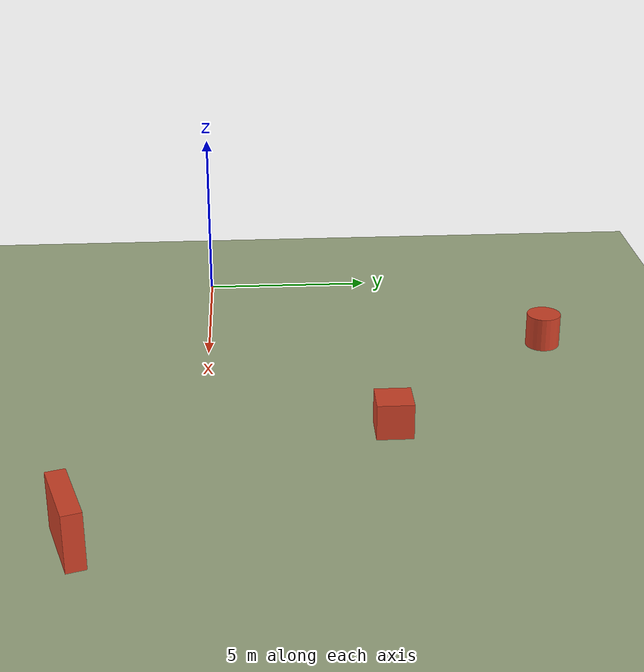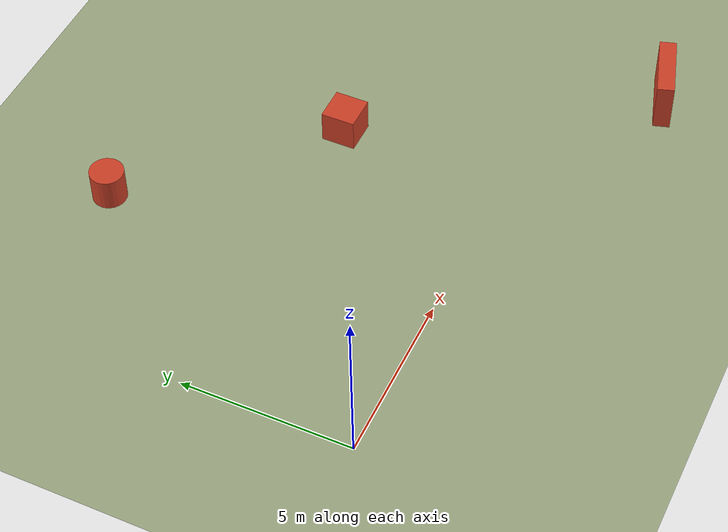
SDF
<?xml version="1.0"?>
<!--
  flat_field.sdf — 100m x 100m 평지 테스트 월드
  Nav2 웨이포인트 네비게이션 검증용 기본 환경
-->
<sdf version="1.9">
  <world name="flat_field">

    <!-- 물리 엔진 설정 -->
    <physics name="default_physics" type="ode">
      <max_step_size>0.004</max_step_size>
      <real_time_factor>1.0</real_time_factor>
      <real_time_update_rate>250</real_time_update_rate>
    </physics>

    <!-- 시뮬레이션 플러그인 -->
    <plugin filename="gz-sim-physics-system"
            name="gz::sim::systems::Physics"/>
    <plugin filename="gz-sim-user-commands-system"
            name="gz::sim::systems::UserCommands"/>
    <plugin filename="gz-sim-scene-broadcaster-system"
            name="gz::sim::systems::SceneBroadcaster"/>
    <plugin filename="gz-sim-sensors-system"
            name="gz::sim::systems::Sensors">
      <render_engine>ogre2</render_engine>
    </plugin>
    <plugin filename="gz-sim-imu-system"
            name="gz::sim::systems::Imu"/>
    <plugin filename="gz-sim-navsat-system"
            name="gz::sim::systems::NavSat"/>
    <plugin filename="gz-sim-contact-system"
            name="gz::sim::systems::Contact"/>

    <!-- GPS 기준점 (서울 근처) -->
    <spherical_coordinates>
      <surface_model>EARTH_WGS84</surface_model>
      <latitude_deg>37.5665</latitude_deg>
      <longitude_deg>126.978</longitude_deg>
      <elevation>0</elevation>
      <heading_deg>0</heading_deg>
    </spherical_coordinates>

    <!-- 조명 -->
    <light type="directional" name="sun">
      <cast_shadows>true</cast_shadows>
      <pose>0 0 50 0 0 0</pose>
      <diffuse>0.9 0.9 0.85 1</diffuse>
      <specular>0.3 0.3 0.3 1</specular>
      <direction>-0.5 0.1 -0.9</direction>
    </light>

    <light type="directional" name="ambient_fill">
      <cast_shadows>false</cast_shadows>
      <pose>0 0 50 0 0 0</pose>
      <diffuse>0.3 0.3 0.35 1</diffuse>
      <specular>0.0 0.0 0.0 1</specular>
      <direction>0.3 -0.2 -0.8</direction>
    </light>

    <!-- 하늘 -->
    <scene>
      <ambient>0.6 0.6 0.65 1</ambient>
      <background>0.7 0.8 0.95 1</background>
      <shadows>true</shadows>
    </scene>

    <!-- 지면: 100m x 100m 평지 -->
    <model name="ground_plane">
      <static>true</static>
      <link name="ground_link">
        <collision name="ground_collision">
          <geometry>
            <plane>
              <normal>0 0 1</normal>
              <size>100 100</size>
            </plane>
          </geometry>
          <surface>
            <friction>
              <ode>
                <mu>1.0</mu>
                <mu2>1.0</mu2>
              </ode>
            </friction>
          </surface>
        </collision>
        <visual name="ground_visual">
          <geometry>
            <plane>
              <normal>0 0 1</normal>
              <size>100 100</size>
            </plane>
          </geometry>
          <material>
            <ambient>0.55 0.6 0.45 1</ambient>
            <diffuse>0.6 0.65 0.5 1</diffuse>
            <specular>0.1 0.1 0.1 1</specular>
          </material>
        </visual>
      </link>
    </model>

    <!-- 테스트용 장애물 (박스 3개) -->
    <model name="obstacle_1">
      <static>true</static>
      <pose>10 5 0.5 0 0 0</pose>
      <link name="link">
        <collision name="collision">
          <geometry><box><size>1.0 1.0 1.0</size></box></geometry>
        </collision>
        <visual name="visual">
          <geometry><box><size>1.0 1.0 1.0</size></box></geometry>
          <material>
            <ambient>0.7 0.2 0.1 1</ambient>
            <diffuse>0.8 0.25 0.15 1</diffuse>
          </material>
        </visual>
      </link>
    </model>

    <model name="obstacle_2">
      <static>true</static>
      <pose>15 -3 0.75 0 0 0.3</pose>
      <link name="link">
        <collision name="collision">
          <geometry><box><size>2.0 0.5 1.5</size></box></geometry>
        </collision>
        <visual name="visual">
          <geometry><box><size>2.0 0.5 1.5</size></box></geometry>
          <material>
            <ambient>0.7 0.2 0.1 1</ambient>
            <diffuse>0.8 0.25 0.15 1</diffuse>
          </material>
        </visual>
      </link>
    </model>

    <model name="obstacle_3">
      <static>true</static>
      <pose>5 10 0.5 0 0 0</pose>
      <link name="link">
        <collision name="collision">
          <geometry><cylinder><radius>0.5</radius><length>1.0</length></cylinder></geometry>
        </collision>
        <visual name="visual">
          <geometry><cylinder><radius>0.5</radius><length>1.0</length></cylinder></geometry>
          <material>
            <ambient>0.7 0.2 0.1 1</ambient>
            <diffuse>0.8 0.25 0.15 1</diffuse>
          </material>
        </visual>
      </link>
    </model>

  </world>
</sdf>
